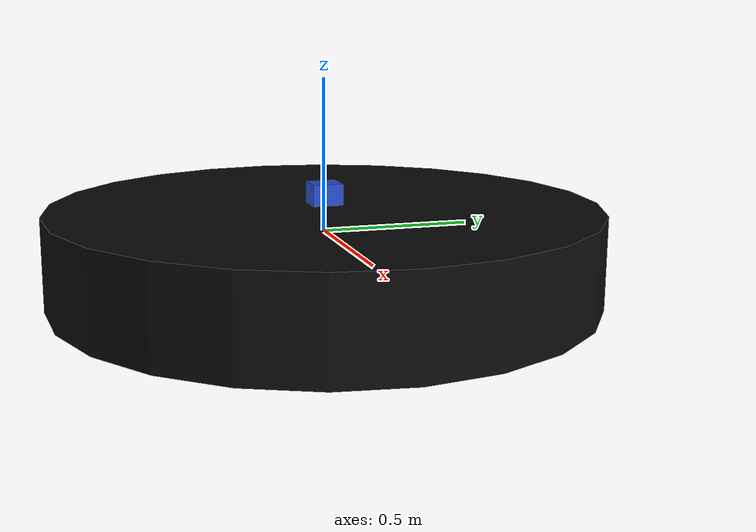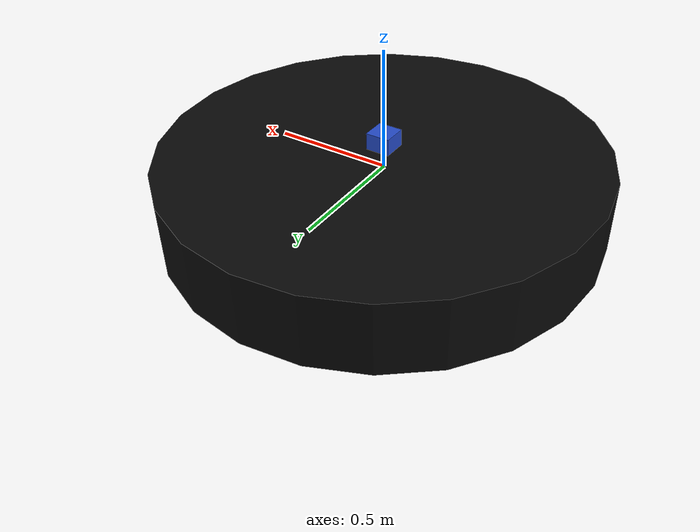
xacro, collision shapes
<?xml version="1.0"?>
<robot xmlns:xacro="http://www.ros.org/wiki/xacro" name="pioneer3dx" >

  <xacro:include filename="$(find multi_robot_scenario)/xacro/materials.xacro" />

  <link name="base_link">
    <material>Gazebo/Black</material>
    <inertial>
      <origin xyz="0 0 0.01" rpy="0 0 0" />
      <mass value="2.18" />
      <inertia
        ixx="0.0624"
        ixy="0.00"
        ixz="0.00"
        iyy="0.0624"
        iyz="0.00"
        izz="0.0832"
      />
    </inertial>
    <visual>
      <origin xyz="0 0 0" rpy="0 0 0" />
      <geometry>
        <mesh filename="$(find multi_robot_scenario)/meshes/drone/base_link.STL" />
      </geometry>
      <material name="base_link_material">
        <color rgba="0.038 0.038 0.038 1.0"/>
      </material>
    </visual>
    <collision>
      <origin xyz="0 0 -0.06" rpy="0 0 0" />
      <geometry>
        <cylinder radius="0.9" length="0.3"/>
      </geometry>
    </collision>
  </link>
  <gazebo reference="base_link">
    <material value="Gazebo/Black"/>
  </gazebo>

   <link name="camera_link">
          <inertial>
              <mass value="0.1" />
              <origin xyz="0 0 0" />
              <inertia ixx="0.01" ixy="0.0" ixz="0.0"
                        iyy="0.01" iyz="0.0"
                        izz="0.01" />
          </inertial>
          <visual>
              <origin xyz=" 0 0 0 " rpy="0 0 0" />
              <geometry>
                  <box size="0.01 0.04 0.04" />
              </geometry>
              <material name="red"/>
          </visual>

          <collision>
              <origin xyz="0.0 0.0 0.0" rpy="0 0 0" />
              <geometry>
                  <box size="0.01 0.04 0.04" />
              </geometry>
          </collision>
      </link>

      <gazebo reference="camera_link">
          <material>Gazebo/Red</material>
      </gazebo>

      <gazebo reference="camera_link">
          <sensor type="camera" name="camera_node">
              <update_rate>30.0</update_rate>
              <camera name="head">
                  <horizontal_fov>1.2</horizontal_fov>
                  <image>
                      <width>160</width>
                      <height>160</height>
                      <format>R8G8B8</format>
                  </image>
                  <clip>
                      <near>0.02</near>
                      <far>300</far>
                  </clip>
                  <noise>
                      <type>gaussian</type>
                      <mean>0.7</mean>
                      <stddev>0.007</stddev>
                  </noise>
              </camera>
              <plugin name="gazebo_camera" filename="libgazebo_ros_camera.so">
                  <alwaysOn>true</alwaysOn>
                  <updateRate>0.0</updateRate>
                  <cameraName>/camera</cameraName>
                  <imageTopicName>image_raw</imageTopicName>
                  <cameraInfoTopicName>camera_info</cameraInfoTopicName>
                  <frameName>camera_link</frameName>
                  <hackBaseline>0.07</hackBaseline>
                  <distortionK1>0.0</distortionK1>
                  <distortionK2>0.0</distortionK2>
                  <distortionK3>0.0</distortionK3>
                  <distortionT1>0.0</distortionT1>
                  <distortionT2>0.0</distortionT2>
              </plugin>
          </sensor>
      </gazebo>

  <joint name="camera_joint" type="fixed">
      <origin xyz="0 -0.082 -0.12" rpy="0 0 -1.5707" />
      <parent link="base_link"/>
      <child link="camera_link"/>
    </joint>

  <joint name="base_link_drone_link_joint" type="fixed">
      <axis xyz="0 0 1" />
      <origin xyz="0 0 0.11" rpy="0 0 0"/>
      <parent link="base_link"/>
      <child link="drone_link"/>
    </joint>

    <link name="drone_link">
      <collision>
        <origin xyz="0 0 0" rpy="0 0 0"/>
        <geometry>
          <box size="0.1 0.1 0.1"/>
        </geometry>
      </collision>
      <inertial>
        <mass value="1e-5" />
        <origin xyz="0 0 0" rpy="0 0 0"/>
        <inertia ixx="1e-6" ixy="0" ixz="0" iyy="1e-6" iyz="0" izz="1e-6" />
      </inertial>
    </link>

    <gazebo reference="drone_link">
      <material>Gazebo/Blue</material>
      <laser_retro>0</laser_retro>
      <sensor_ray_pass>true</sensor_ray_pass>
      <self_collide>false</self_collide>
        <sensor name="laser" type="ray">
        <pose>0 0 0 0 0 -1.5707</pose>
          <ray>
            <scan>
              <horizontal>
                <resolution>0.54</resolution>
                <max_angle>1.5707</max_angle>
                <min_angle>-1.5707</min_angle>
                <samples>360</samples>
              </horizontal>
            </scan>
            <range>
              <min>0.08</min>
              <max>12</max>
              <resolution>0.01</resolution>
            </range>
            <noise>
              <type>gaussian</type>
              <mean>0.7</mean>
              <stddev>0.007</stddev>
            </noise>
          </ray>

          <plugin name="laser" filename="libgazebo_ros_laser.so" >
            <robotNamespace></robotNamespace>
            <topicName>drone_link/scan</topicName>
            <frameName>drone_link</frameName>
          </plugin>
          <always_on>1</always_on>
          <update_rate>6</update_rate>
          <visualize>true</visualize>
        </sensor>
    </gazebo>

</robot>
